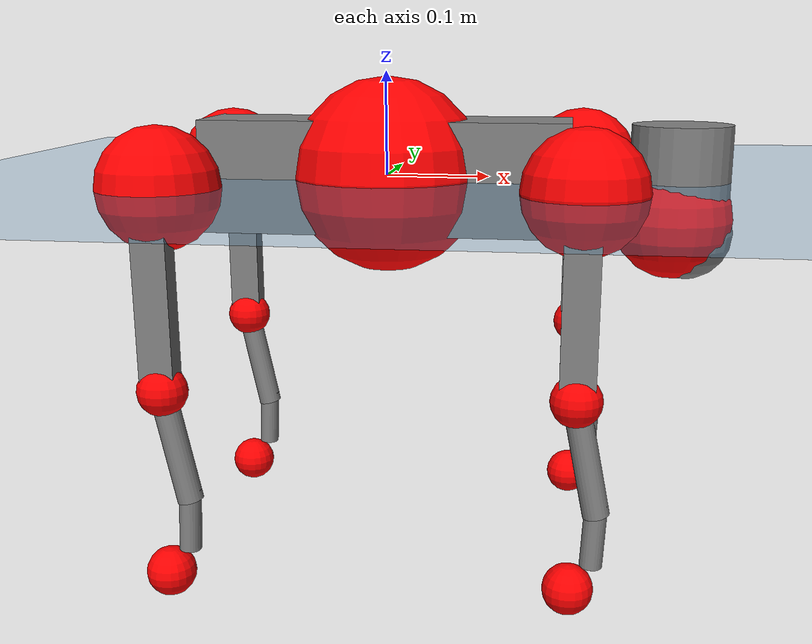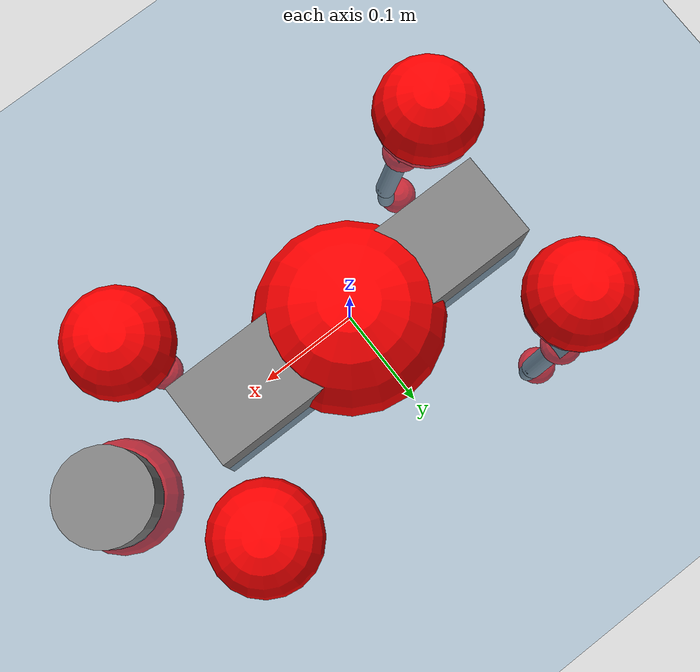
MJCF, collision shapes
<mujoco model="go2">
  <compiler angle="radian" assetdir="assets" balanceinertia="true" inertiafromgeom="false"/>

  <option timestep="0.005" density="1.2" viscosity="2e-05"/>

  <size nkey="1"/>

  <visual>
    <quality shadowsize="8192"/>
    <map shadowclip="0.5"/>
  </visual>

  <default>
    <default class="/">
      <geom contype="0" conaffinity="0" group="1" solref="-1000 -80"/>
      <site size="0.01 0.005 0.005" group="5"/>
      <general forcelimited="true" biastype="affine" gainprm="20" biasprm="0 -20 -0.5"/>
      <default class="go2">
        <joint armature="0.01" damping="0.01" frictionloss="0.2"/>
        <geom condim="1" margin="0.001"/>
        <default class="visual">
          <geom type="mesh" group="2"/>
        </default>
        <default class="collision">
          <geom group="3"/>
          <default class="foot">
            <geom size="0.022 0 0" condim="6" priority="1" friction="0.8 0.02 0.01" solimp="0.015 1 0.022"/>
          </default>
        </default>
        <default class="reward_collision_sphere">
          <geom group="5" rgba="1 0 0 1"/>
        </default>
      </default>
    </default>
  </default>

  <asset>
    <texture type="skybox" colorspace="auto" name="//unnamed_texture_0" builtin="gradient" rgb1="0.95 0.95 0.95" rgb2="0.95 0.95 0.95" width="100" height="600"/>
    <texture type="2d" colorspace="auto" name="texplane" builtin="checker" rgb1="0.345 0.575 0.748" rgb2="0.345 0.575 0.748" markrgb="1 1 1" width="512" height="512"/>
    <material name="MatPlane" class="/" texture="texplane" texuniform="true" texrepeat="2 2" specular="0.9"/>
    <material name="metal" class="/" rgba="0.9 0.95 0.95 1"/>
    <material name="black" class="/" rgba="0 0 0 1"/>
    <material name="white" class="/"/>
    <material name="gray" class="/" rgba="0.671705 0.692426 0.77427 1"/>
    <mesh name="base_0" class="/" file="base_0.obj"/>
    <mesh name="base_1" class="/" file="base_1.obj"/>
    <mesh name="base_2" class="/" file="base_2.obj"/>
    <mesh name="base_3" class="/" file="base_3.obj"/>
    <mesh name="base_4" class="/" file="base_4.obj"/>
    <mesh name="hip_0" class="/" file="hip_0.obj"/>
    <mesh name="hip_1" class="/" file="hip_1.obj"/>
    <mesh name="thigh_0" class="/" file="thigh_0.obj"/>
    <mesh name="thigh_1" class="/" file="thigh_1.obj"/>
    <mesh name="thigh_mirror_0" class="/" file="thigh_mirror_0.obj"/>
    <mesh name="thigh_mirror_1" class="/" file="thigh_mirror_1.obj"/>
    <mesh name="calf_0" class="/" file="calf_0.obj"/>
    <mesh name="calf_1" class="/" file="calf_1.obj"/>
    <mesh name="calf_mirror_0" class="/" file="calf_mirror_0.obj"/>
    <mesh name="calf_mirror_1" class="/" file="calf_mirror_1.obj"/>
    <mesh name="foot" class="/" file="foot.obj"/>
  </asset>

  <worldbody>
    <geom name="floor" class="/" size="100 100 0.125" type="plane" group="0" material="MatPlane"/>
    <light name="toplight_shadow" class="/" pos="0 0 5" dir="0.0990148 0.0990148 -0.990148" type="directional" ambient="0.04 0.04 0.04" diffuse="0.55 0.55 0.55" specular="0.12 0.12 0.12"/>
    <light name="toplight_fill" class="/" pos="0 0 5" dir="0.0990148 0.0990148 -0.990148" type="directional" castshadow="false" ambient="0.04 0.04 0.04" diffuse="0.3 0.3 0.3" specular="0.08 0.08 0.08"/>
    <body name="trunk" childclass="go2" pos="0.000818934 0.000154772 0.000673359" quat="1 0.000418814 0.000129362 5.48305e-05">
      <inertial pos="0.021412 -0.000603861 -0.00503122" quat="-0.00141996 0.711911 -0.00303757 0.702262" mass="5.97506" diaginertia="0.102038 0.100948 0.0113766"/>
      <joint name="//unnamed_joint_0" type="free" armature="0" damping="0" frictionloss="0"/>
      <geom name="//unnamed_geom_1" class="visual" material="black" mesh="base_0"/>
      <geom name="//unnamed_geom_2" class="visual" material="black" mesh="base_1"/>
      <geom name="//unnamed_geom_3" class="visual" material="black" mesh="base_2"/>
      <geom name="//unnamed_geom_4" class="visual" material="white" mesh="base_3"/>
      <geom name="//unnamed_geom_5" class="visual" material="gray" mesh="base_4"/>
      <geom name="trunk_1" class="collision" size="0.178609 0.0443911 0.0541239" type="box"/>
      <geom name="trunk_2" class="collision" size="0.0474771 0.0427294" pos="0.281505 0 0.00855138" type="cylinder"/>
      <geom name="trunk_3" class="collision" size="0.0446285" pos="0.289407 0 -0.0513083"/>
      <geom name="//unnamed_geom_9" class="reward_collision_sphere" size="0.0949543"/>
      <geom name="//unnamed_geom_10" class="reward_collision_sphere" size="0.0569726" pos="0.276566 0 -0.0384812"/>
      <site name="imu" pos="-0.0292585 -0.00397227 0.0362354" size="0.00949543"/>
      <camera name="track" pos="0 -2.01151 0" quat="0.707107 0.707107 0 0" mode="trackcom"/>
      <camera name="ego_camera" pos="0.308174 0 0.0384812" quat="-0.5 -0.5 0.5 0.5"/>
      <body name="FL_hip" pos="0.190272 0.0467388 0.0020218" quat="1 -0.000110406 -9.16686e-05 7.48111e-05">
        <inertial pos="-0.00456299 0.00179864 -0.000604607" quat="0.497469 0.496294 0.508016 0.498132" mass="0.581466" diaginertia="0.00083232 0.000613416 0.00021798"/>
        <joint name="FL_hip_joint" pos="0 0 0" axis="0.999999 0.00080567 -0.000710527" stiffness="0.00254944" range="-1.04736 1.05258" armature="0.00915233" damping="0.00986139" frictionloss="0.187888"/>
        <geom name="//unnamed_geom_11" class="visual" material="metal" mesh="hip_0"/>
        <geom name="//unnamed_geom_12" class="visual" material="gray" mesh="hip_1"/>
        <geom name="//unnamed_geom_13" class="collision" size="0.043679 0.0189909" pos="0 0.0804603 0" quat="0.707107 0.707107 0 0" type="cylinder"/>
        <geom name="//unnamed_geom_14" class="reward_collision_sphere" size="0.0569726" pos="0 0.0704028 0"/>
        <body name="FL_thigh" pos="-0.000912248 0.0954799 0.00175866" quat="1 -2.32768e-05 -4.75443e-05 3.54998e-05">
          <inertial pos="-0.00422402 -0.0224994 -0.0286409" quat="0.829741 0.0842281 -0.0184473 0.551448" mass="0.978986" diaginertia="0.00560233 0.00605348 0.000402905"/>
          <joint name="FL_thigh_joint" pos="0 0 0" axis="0.000885902 0.99999 0.00431104" range="-1.569 3.50725" armature="0.00971137" damping="0.000964402" frictionloss="0.189509"/>
          <geom name="//unnamed_geom_15" class="visual" material="metal" mesh="thigh_0"/>
          <geom name="//unnamed_geom_16" class="visual" material="gray" mesh="thigh_1"/>
          <geom name="//unnamed_geom_17" class="collision" size="0.101126 0.0116319 0.0161422" pos="0 0 -0.0910722" quat="0.707107 0 0.707107 0" type="box"/>
          <body name="FL_calf" pos="-0.000157391 0.000219587 -0.182976" quat="1 -2.93923e-05 6.55962e-05 1.49908e-05">
            <inertial pos="0.00600463 0.000200903 -0.121061" quat="0.710624 0.00160826 -0.00439182 0.703557" mass="0.207287" diaginertia="0.00138936 0.00150061 2.43776e-05"/>
            <joint name="FL_calf_joint" pos="0 0 0" axis="0.00451694 0.999964 -0.0071946" range="-2.7414 -0.831406" armature="0.00951227" damping="0.00389757" frictionloss="0.190092"/>
            <geom name="//unnamed_geom_18" class="visual" material="gray" mesh="calf_0"/>
            <geom name="//unnamed_geom_19" class="visual" material="black" mesh="calf_1"/>
            <geom name="FL_calf0" class="collision" size="0.0113945 0.0569726" pos="0.00790189 0 -0.0513083" quat="0.994493 0 -0.104807 0" type="cylinder"/>
            <geom name="//unnamed_geom_21" class="collision" size="0.010445 0.0308601" pos="0.0197547 0 -0.12656" quat="0.999688 0 0.0249974 0" type="cylinder"/>
            <geom name="//unnamed_geom_22" class="visual" pos="0 0 -0.182144" quat="1 0 0 0" material="black" mesh="foot"/>
            <geom name="FL_foot" class="foot" size="0.0168231" pos="-0.00197547 0 -0.182144"/>
            <geom name="//unnamed_geom_24" class="reward_collision_sphere" size="0.0237386"/>
            <geom name="//unnamed_geom_25" class="reward_collision_sphere" size="0.0237386" pos="-0.00197547 0 -0.182144"/>
            <site name="FL_foot" class="foot" pos="-0.00197547 0 -0.182144" size="0.00949543"/>
          </body>
        </body>
      </body>
      <body name="FR_hip" pos="0.190708 -0.0468726 0.00094241" quat="1 0.000147826 2.10315e-05 6.49774e-06">
        <inertial pos="-0.00564367 -0.000987478 -0.000592418" quat="0.498454 0.505174 0.498987 0.497347" mass="0.582883" diaginertia="0.00084162 0.000613259 0.000221362"/>
        <joint name="FR_hip_joint" pos="0 0 0" axis="0.999995 0.00223771 -0.00228496" stiffness="0.00349326" range="-1.0652 1.04359" armature="0.00949765" damping="0.0152407" frictionloss="0.191088"/>
        <geom name="//unnamed_geom_26" class="visual" pos="0 1.3121e-09 5.62789e-08" quat="4.63268e-05 1 0 0" material="metal" mesh="hip_0"/>
        <geom name="//unnamed_geom_27" class="visual" pos="0 2.12708e-09 -1.39199e-07" quat="4.63268e-05 1 0 0" material="gray" mesh="hip_1"/>
        <geom name="//unnamed_geom_28" class="collision" size="0.043679 0.0189909" pos="0 -0.0804603 0" quat="0.707107 0.707107 0 0" type="cylinder"/>
        <geom name="//unnamed_geom_29" class="reward_collision_sphere" size="0.0569726" pos="0 -0.0704028 0"/>
        <body name="FR_thigh" pos="-0.000570941 -0.0954318 0.00144451" quat="1 8.25076e-05 5.23993e-05 1.04105e-05">
          <inertial pos="-0.00359118 0.0225647 -0.0281509" quat="0.554808 -0.0219476 0.0857186 0.82726" mass="0.992332" diaginertia="0.00566167 0.00603128 0.000403067"/>
          <joint name="FR_thigh_joint" pos="0 0 0" axis="0.00314227 -0.999994 -0.00147859" range="-3.49653 1.55766" armature="0.00977136" damping="0.0134139" frictionloss="0.194672"/>
          <geom name="//unnamed_geom_30" class="visual" material="metal" mesh="thigh_mirror_0"/>
          <geom name="//unnamed_geom_31" class="visual" material="gray" mesh="thigh_mirror_1"/>
          <geom name="//unnamed_geom_32" class="collision" size="0.101126 0.0116319 0.0161422" pos="0 0 -0.0910722" quat="0.707107 0 0.707107 0" type="box"/>
          <body name="FR_calf" pos="-0.000498838 -0.000166104 -0.18182" quat="1 -2.27204e-05 9.44793e-06 -2.18255e-05">
            <inertial pos="0.00670128 0.000951888 -0.120249" quat="0.703303 -0.00689656 0.00455687 0.710842" mass="0.205975" diaginertia="0.00138003 0.00150245 2.40292e-05"/>
            <joint name="FR_calf_joint" pos="0 0 0" axis="-0.000517754 -0.999997 0.00227515" range="0.840772 2.73478" armature="0.00913815" damping="0.00722684" frictionloss="0.190165"/>
            <geom name="//unnamed_geom_33" class="visual" material="gray" mesh="calf_mirror_0"/>
            <geom name="//unnamed_geom_34" class="visual" material="black" mesh="calf_mirror_1"/>
            <geom name="FR_calf0" class="collision" size="0.0123441 0.0569726" pos="0.00987736 0 -0.0513083" quat="0.995004 0 -0.0998334 0" type="cylinder"/>
            <geom name="//unnamed_geom_36" class="collision" size="0.010445 0.0308601" pos="0.0197547 0 -0.12656" quat="0.999688 0 0.0249974 0" type="cylinder"/>
            <geom name="//unnamed_geom_37" class="visual" pos="0 0 -0.182144" quat="1 0 0 0" material="black" mesh="foot"/>
            <geom name="FR_foot" class="foot" size="0.0224184" pos="-0.00197547 0 -0.182144"/>
            <geom name="//unnamed_geom_39" class="reward_collision_sphere" size="0.0237386"/>
            <geom name="//unnamed_geom_40" class="reward_collision_sphere" size="0.0237386" pos="-0.00197547 0 -0.182144"/>
            <site name="FR_foot" class="foot" pos="-0.00197547 0 -0.182144" size="0.00949543"/>
          </body>
        </body>
      </body>
      <body name="RL_hip" pos="-0.191381 0.0478071 -0.00115779" quat="1 0.000240753 -0.000132567 -0.00019812">
        <inertial pos="0.00537859 0.00232045 -0.000621398" quat="0.505225 0.498145 0.4973 0.499291" mass="0.580738" diaginertia="0.000828485 0.000620248 0.000218749"/>
        <joint name="RL_hip_joint" pos="0 0 0" axis="-0.999862 0.0137516 -0.00933653" stiffness="0.00312811" range="-1.03601 1.04446" armature="0.00943705" damping="0.0106128" frictionloss="0.189434"/>
        <geom name="//unnamed_geom_41" class="visual" pos="-1.15514e-09 0 -2.26435e-07" quat="4.63268e-05 0 1 0" material="metal" mesh="hip_0"/>
        <geom name="//unnamed_geom_42" class="visual" pos="-1.87263e-09 0 -2.00815e-07" quat="4.63268e-05 0 1 0" material="gray" mesh="hip_1"/>
        <geom name="//unnamed_geom_43" class="collision" size="0.043679 0.0189909" pos="0 0.0804603 0" quat="0.707107 0.707107 0 0" type="cylinder"/>
        <geom name="//unnamed_geom_44" class="reward_collision_sphere" size="0.0569726" pos="0 0.0704028 0"/>
        <body name="RL_thigh" pos="-8.8459e-05 0.095468 -0.000702359" quat="1 -2.03274e-05 2.28962e-06 3.33713e-05">
          <inertial pos="-0.00340102 -0.0222292 -0.0287948" quat="0.829395 0.0851914 -0.0199623 0.551767" mass="0.977651" diaginertia="0.00555655 0.00599334 0.00040023"/>
          <joint name="RL_thigh_joint" pos="0 0 0" axis="-0.000678666 1 0.000464977" range="-0.522528 4.52935" armature="0.00945184" damping="0.0109127" frictionloss="0.188113"/>
          <geom name="//unnamed_geom_45" class="visual" material="metal" mesh="thigh_0"/>
          <geom name="//unnamed_geom_46" class="visual" material="gray" mesh="thigh_1"/>
          <geom name="//unnamed_geom_47" class="collision" size="0.101126 0.0116319 0.0161422" pos="0 0 -0.0910722" quat="0.707107 0 0.707107 0" type="box"/>
          <body name="RL_calf" pos="0.00122434 -0.000947722 -0.181604" quat="1 -5.65571e-05 2.42244e-06 -0.000147786">
            <inertial pos="0.00540248 0.000419875 -0.12165" quat="0.711939 0.000190957 -0.00624395 0.702214" mass="0.20818" diaginertia="0.00139936 0.00149925 2.42344e-05"/>
            <joint name="RL_calf_joint" pos="0 0 0" axis="0.0083835 0.999931 0.00820822" range="-2.71607 -0.835542" armature="0.00954367" damping="0.000814855" frictionloss="0.182012"/>
            <geom name="//unnamed_geom_48" class="visual" material="gray" mesh="calf_0"/>
            <geom name="//unnamed_geom_49" class="visual" material="black" mesh="calf_1"/>
            <geom name="RL_calf0" class="collision" size="0.0123441 0.0569726" pos="0.00987736 0 -0.0513083" quat="0.995004 0 -0.0998334 0" type="cylinder"/>
            <geom name="//unnamed_geom_51" class="collision" size="0.010445 0.0308601" pos="0.0197547 0 -0.12656" quat="0.999688 0 0.0249974 0" type="cylinder"/>
            <geom name="//unnamed_geom_52" class="visual" pos="0 0 -0.182144" quat="1 0 0 0" material="black" mesh="foot"/>
            <geom name="RL_foot" class="foot" size="0.0186654" pos="-0.00197547 0 -0.182144"/>
            <geom name="//unnamed_geom_54" class="reward_collision_sphere" size="0.0237386"/>
            <geom name="//unnamed_geom_55" class="reward_collision_sphere" size="0.0237386" pos="-0.00197547 0 -0.182144"/>
            <site name="RL_foot" class="foot" pos="-0.00197547 0 -0.182144" size="0.00949543"/>
          </body>
        </body>
      </body>
      <body name="RR_hip" pos="-0.191126 -0.0476801 -0.00142387" quat="1 -0.000133922 7.48071e-05 -5.39047e-05">
        <inertial pos="0.00530535 -0.00219605 0.000885795" quat="0.49927 0.496998 0.498268 0.505421" mass="0.57339" diaginertia="0.00082177 0.000605655 0.000217679"/>
        <joint name="RR_hip_joint" pos="0 0 0" axis="-0.999993 0.000325119 0.00360242" range="-1.05166 1.05925" armature="0.00989304" damping="0.00460898" frictionloss="0.190041"/>
        <geom name="//unnamed_geom_56" class="visual" pos="1.15577e-09 1.3121e-09 -2.82714e-07" quat="2.14617e-09 4.63268e-05 4.63268e-05 -1" material="metal" mesh="hip_0"/>
        <geom name="//unnamed_geom_57" class="visual" pos="1.87108e-09 2.12708e-09 -6.16161e-08" quat="2.14617e-09 4.63268e-05 4.63268e-05 -1" material="gray" mesh="hip_1"/>
        <geom name="//unnamed_geom_58" class="collision" size="0.043679 0.0189909" pos="0 -0.0804603 0" quat="0.707107 0.707107 0 0" type="cylinder"/>
        <geom name="//unnamed_geom_59" class="reward_collision_sphere" size="0.0569726" pos="0 -0.0704028 0"/>
        <body name="RR_thigh" pos="0.000552928 -0.0962786 -0.00114166" quat="1 5.01511e-05 2.42209e-05 8.33078e-06">
          <inertial pos="-0.00266653 0.0216758 -0.0280453" quat="0.551246 -0.0199229 0.0849427 0.829769" mass="0.998589" diaginertia="0.00559324 0.00606387 0.000401574"/>
          <joint name="RR_thigh_joint" pos="0 0 0" axis="0.00876589 -0.999955 0.00350877" range="-4.54311 0.523061" armature="0.0094657" damping="0.0139673" frictionloss="0.194211"/>
          <geom name="//unnamed_geom_60" class="visual" material="metal" mesh="thigh_mirror_0"/>
          <geom name="//unnamed_geom_61" class="visual" material="gray" mesh="thigh_mirror_1"/>
          <geom name="//unnamed_geom_62" class="collision" size="0.101126 0.0116319 0.0161422" pos="0 0 -0.0910722" quat="0.707107 0 0.707107 0" type="box"/>
          <body name="RR_calf" pos="0.00130605 -0.000172936 -0.182818" quat="1 -2.80591e-07 -3.24974e-06 -4.76688e-05">
            <inertial pos="0.00610396 0.0006417 -0.121157" quat="0.704094 -0.00441255 0.00231249 0.710089" mass="0.210796" diaginertia="0.00140774 0.00152777 2.44744e-05"/>
            <joint name="RR_calf_joint" pos="0 0 0" axis="-0.00117816 -0.999974 -0.00709356" stiffness="0.000245509" range="0.831351 2.70976" armature="0.00972501" damping="0.00599869" frictionloss="0.187997"/>
            <geom name="//unnamed_geom_63" class="visual" material="gray" mesh="calf_mirror_0"/>
            <geom name="//unnamed_geom_64" class="visual" material="black" mesh="calf_mirror_1"/>
            <geom name="RR_calf0" class="collision" size="0.0123441 0.0569726" pos="0.00987736 0 -0.0513083" quat="0.995004 0 -0.0998334 0" type="cylinder"/>
            <geom name="//unnamed_geom_66" class="collision" size="0.010445 0.0308601" pos="0.0197547 0 -0.12656" quat="0.999688 0 0.0249974 0" type="cylinder"/>
            <geom name="//unnamed_geom_67" class="visual" pos="0 0 -0.182144" quat="1 0 0 0" material="black" mesh="foot"/>
            <geom name="RR_foot" class="foot" size="0.0226097" pos="-0.00197547 0 -0.182144"/>
            <geom name="//unnamed_geom_69" class="reward_collision_sphere" size="0.0237386"/>
            <geom name="//unnamed_geom_70" class="reward_collision_sphere" size="0.0237386" pos="-0.00197547 0 -0.182144"/>
            <site name="RR_foot" class="foot" pos="-0.00197547 0 -0.182144" size="0.00949543"/>
          </body>
        </body>
      </body>
    </body>
  </worldbody>

  <contact>
    <pair class="/" geom1="floor" geom2="FL_foot" name="//unnamed_contact_0"/>
    <pair class="/" geom1="floor" geom2="FR_foot" name="//unnamed_contact_1"/>
    <pair class="/" geom1="floor" geom2="RL_foot" name="//unnamed_contact_2"/>
    <pair class="/" geom1="floor" geom2="RR_foot" name="//unnamed_contact_3"/>
  </contact>

  <actuator>
    <general name="FL_hip" class="/" joint="FL_hip_joint" forcerange="-22.6588 22.6588" gainprm="18.9697" biasprm="0 -18.9697 -0.470626"/>
    <general name="FL_thigh" class="/" joint="FL_thigh_joint" forcerange="-22.3081 22.3081" gainprm="18.9697" biasprm="0 -18.9697 -0.470626"/>
    <general name="FL_calf" class="/" joint="FL_calf_joint" forcerange="-42.9698 42.9698" gainprm="18.9697" biasprm="0 -18.9697 -0.470626"/>
    <general name="FR_hip" class="/" joint="FR_hip_joint" forcerange="-22.2638 22.2638" gainprm="18.9697" biasprm="0 -18.9697 -0.470626"/>
    <general name="FR_thigh" class="/" joint="FR_thigh_joint" forcerange="-21.7334 21.7334" gainprm="18.9697" biasprm="0 -18.9697 -0.470626"/>
    <general name="FR_calf" class="/" joint="FR_calf_joint" forcerange="-44.8086 44.8086" gainprm="18.9697" biasprm="0 -18.9697 -0.470626"/>
    <general name="RL_hip" class="/" joint="RL_hip_joint" forcerange="-22.6583 22.6583" gainprm="18.9697" biasprm="0 -18.9697 -0.470626"/>
    <general name="RL_thigh" class="/" joint="RL_thigh_joint" forcerange="-21.9822 21.9822" gainprm="18.9697" biasprm="0 -18.9697 -0.470626"/>
    <general name="RL_calf" class="/" joint="RL_calf_joint" forcerange="-42.5827 42.5827" gainprm="18.9697" biasprm="0 -18.9697 -0.470626"/>
    <general name="RR_hip" class="/" joint="RR_hip_joint" forcerange="-22.6513 22.6513" gainprm="18.9697" biasprm="0 -18.9697 -0.470626"/>
    <general name="RR_thigh" class="/" joint="RR_thigh_joint" forcerange="-21.8947 21.8947" gainprm="18.9697" biasprm="0 -18.9697 -0.470626"/>
    <general name="RR_calf" class="/" joint="RR_calf_joint" forcerange="-44.232 44.232" gainprm="18.9697" biasprm="0 -18.9697 -0.470626"/>
  </actuator>

  <sensor>
    <gyro site="imu" name="imu_angular_velocity"/>
    <velocimeter site="imu" name="imu_linear_velocity"/>
    <framelinvel objtype="site" objname="FL_foot" name="FL_foot_global_linear_velocity"/>
    <framelinvel objtype="site" objname="FR_foot" name="FR_foot_global_linear_velocity"/>
    <framelinvel objtype="site" objname="RL_foot" name="RL_foot_global_linear_velocity"/>
    <framelinvel objtype="site" objname="RR_foot" name="RR_foot_global_linear_velocity"/>
  </sensor>

  <keyframe>
    <key name="home" qpos="0 0 0.325 1 0 0 0 0.1 0.8 -1.5 -0.1 -0.8 1.5 -0.1 0.8 -1.5 0.1 -0.8 1.5"/>
  </keyframe>
</mujoco>
